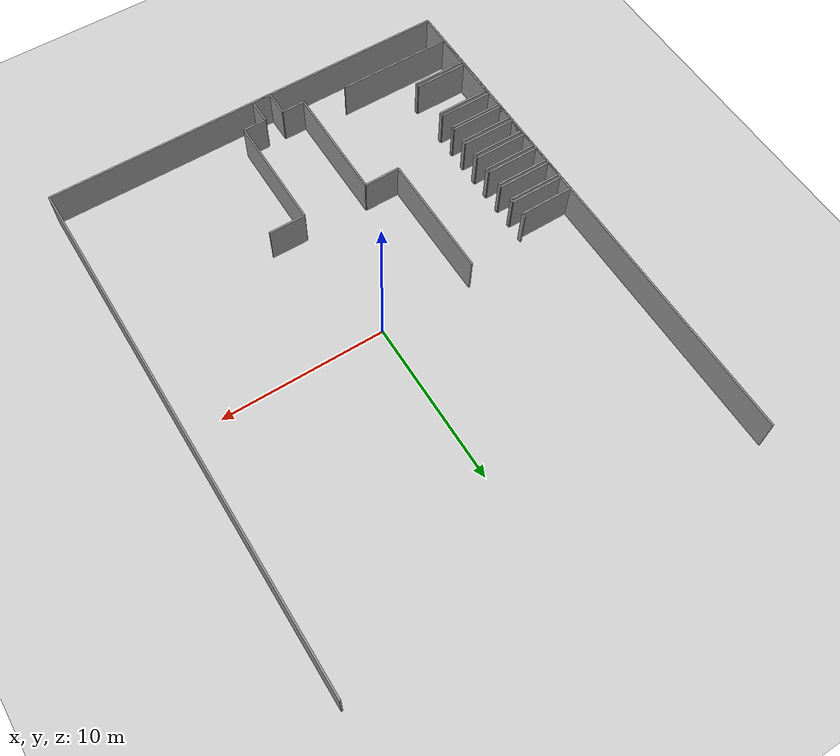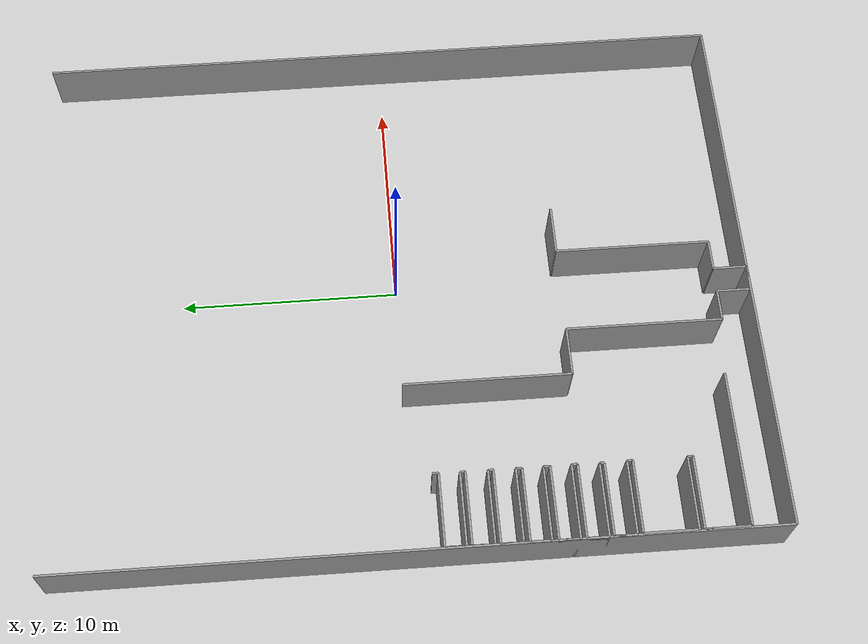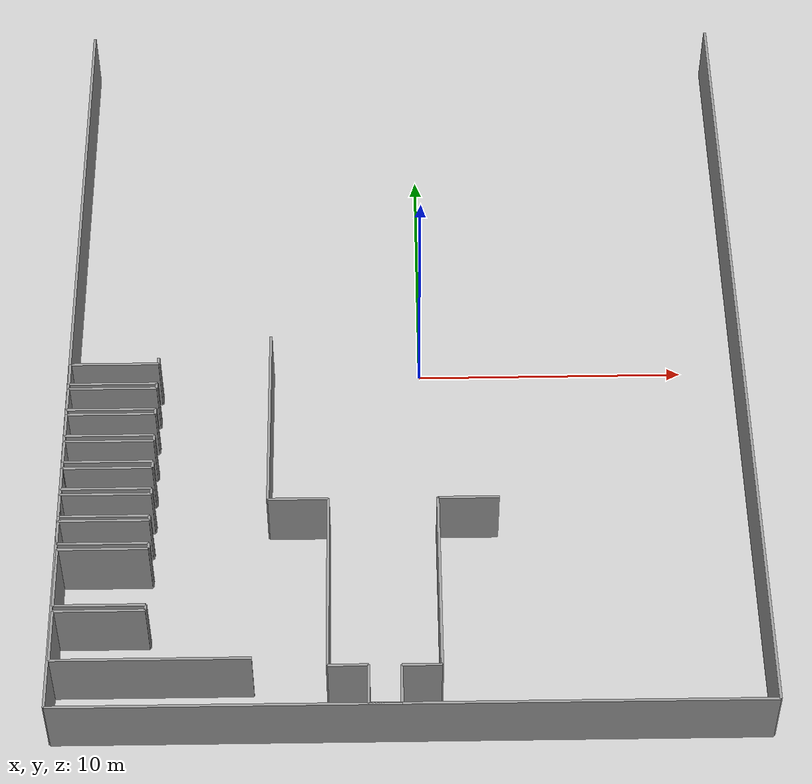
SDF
<sdf version="1.6">
 <world name="default">
  <model name="ground_plane">
   <static>1</static>
   <link name="link">
    <collision name="collision">
     <geometry><plane><normal>0 0 1</normal><size>100 100</size></plane></geometry>
     <surface><friction><ode><mu>100</mu><mu2>50</mu2></ode></friction></surface>
    </collision>
    <visual name="visual">
     <cast_shadows>0</cast_shadows>
     <geometry><plane><normal>0 0 1</normal><size>100 100</size></plane></geometry>
     <material>
      <script><uri>file://media/materials/scripts/gazebo.material</uri><name>Gazebo/Grey</name></script>
     </material>
    </visual>
   </link>
  </model>
  <model name="50045365">
   <static>1</static>
   <link name="Wall_37">
    <collision name="Wall_37_Collision">
     <geometry><box><size>1.53298293723 0.1 2.5</size></box></geometry>
     <pose>0.766491468617 0 1.25 0 0 0</pose>
    </collision>
    <visual name="Wall_37_Visual">
     <pose>0.766491468617 0 1.25 0 0 0</pose>
     <geometry><box><size>1.53298293723 0.1 2.5</size></box></geometry>
     <material>
      <script><uri>file://media/materials/scripts/gazebo.material</uri><name>Gazebo/Grey</name></script>
      <ambient>1 1 1 1</ambient>
     </material>
    </visual>
    <pose>11.1219022953 -32.0639092017 0 0 0 1.57079632679</pose>
   </link>
   <link name="Wall_38">
    <collision name="Wall_38_Collision">
     <geometry><box><size>1.41618423725 0.1 2.5</size></box></geometry>
     <pose>0.708092118627 0 1.25 0 0 0</pose>
    </collision>
    <visual name="Wall_38_Visual">
     <pose>0.708092118627 0 1.25 0 0 0</pose>
     <geometry><box><size>1.41618423725 0.1 2.5</size></box></geometry>
     <material>
      <script><uri>file://media/materials/scripts/gazebo.material</uri><name>Gazebo/Grey</name></script>
      <ambient>1 1 1 1</ambient>
     </material>
    </visual>
    <pose>11.1219022953 -30.5309262645 0 0 0 3.14159265359</pose>
   </link>
   <link name="Wall_39">
    <collision name="Wall_39_Collision">
     <geometry><box><size>7.06632134877 0.1 2.5</size></box></geometry>
     <pose>3.53316067439 0 1.25 0 0 0</pose>
    </collision>
    <visual name="Wall_39_Visual">
     <pose>3.53316067439 0 1.25 0 0 0</pose>
     <geometry><box><size>7.06632134877 0.1 2.5</size></box></geometry>
     <material>
      <script><uri>file://media/materials/scripts/gazebo.material</uri><name>Gazebo/Grey</name></script>
      <ambient>1 1 1 1</ambient>
     </material>
    </visual>
    <pose>9.70571805809 -30.5309262645 0 0 0 1.57079632679</pose>
   </link>
   <link name="Wall_40">
    <collision name="Wall_40_Collision">
     <geometry><box><size>2.18108876701 0.1 2.5</size></box></geometry>
     <pose>1.09054438351 0 1.25 0 0 0</pose>
    </collision>
    <visual name="Wall_40_Visual">
     <pose>1.09054438351 0 1.25 0 0 0</pose>
     <geometry><box><size>2.18108876701 0.1 2.5</size></box></geometry>
     <material>
      <script><uri>file://media/materials/scripts/gazebo.material</uri><name>Gazebo/Grey</name></script>
      <ambient>1 1 1 1</ambient>
     </material>
    </visual>
    <pose>9.70571805809 -23.4646049157 0 0 0 3.14159265359</pose>
   </link>
   <link name="Wall_41">
    <collision name="Wall_41_Collision">
     <geometry><box><size>7.5483698964 0.1 2.5</size></box></geometry>
     <pose>3.7741849482 0 1.25 0 0 0</pose>
    </collision>
    <visual name="Wall_41_Visual">
     <pose>3.7741849482 0 1.25 0 0 0</pose>
     <geometry><box><size>7.5483698964 0.1 2.5</size></box></geometry>
     <material>
      <script><uri>file://media/materials/scripts/gazebo.material</uri><name>Gazebo/Grey</name></script>
      <ambient>1 1 1 1</ambient>
     </material>
    </visual>
    <pose>7.52462929108 -23.4646049157 0 0 0 1.57079632679</pose>
   </link>
   <link name="Wall_46">
    <collision name="Wall_46_Collision">
     <geometry><box><size>2.22552305505 0.1 2.5</size></box></geometry>
     <pose>1.11276152752 0 1.25 0 0 0</pose>
    </collision>
    <visual name="Wall_46_Visual">
     <pose>1.11276152752 0 1.25 0 0 0</pose>
     <geometry><box><size>2.22552305505 0.1 2.5</size></box></geometry>
     <material>
      <script><uri>file://media/materials/scripts/gazebo.material</uri><name>Gazebo/Grey</name></script>
      <ambient>1 1 1 1</ambient>
     </material>
    </visual>
    <pose>15.9036664635 -23.4700639854 0 0 0 3.14159265359</pose>
   </link>
   <link name="Wall_47">
    <collision name="Wall_47_Collision">
     <geometry><box><size>7.0754621166 0.1 2.5</size></box></geometry>
     <pose>3.5377310583 0 1.25 0 0 0</pose>
    </collision>
    <visual name="Wall_47_Visual">
     <pose>3.5377310583 0 1.25 0 0 0</pose>
     <geometry><box><size>7.0754621166 0.1 2.5</size></box></geometry>
     <material>
      <script><uri>file://media/materials/scripts/gazebo.material</uri><name>Gazebo/Grey</name></script>
      <ambient>1 1 1 1</ambient>
     </material>
    </visual>
    <pose>13.6781434085 -23.4700639854 0 0 0 -1.57079632679</pose>
   </link>
   <link name="Wall_48">
    <collision name="Wall_48_Collision">
     <geometry><box><size>1.40539305302 0.1 2.5</size></box></geometry>
     <pose>0.702696526508 0 1.25 0 0 0</pose>
    </collision>
    <visual name="Wall_48_Visual">
     <pose>0.702696526508 0 1.25 0 0 0</pose>
     <geometry><box><size>1.40539305302 0.1 2.5</size></box></geometry>
     <material>
      <script><uri>file://media/materials/scripts/gazebo.material</uri><name>Gazebo/Grey</name></script>
      <ambient>1 1 1 1</ambient>
     </material>
    </visual>
    <pose>13.6781434085 -30.545526102 0 0 0 3.14159265359</pose>
   </link>
   <link name="Wall_49">
    <collision name="Wall_49_Collision">
     <geometry><box><size>1.53933069267 0.1 2.5</size></box></geometry>
     <pose>0.769665346334 0 1.25 0 0 0</pose>
    </collision>
    <visual name="Wall_49_Visual">
     <pose>0.769665346334 0 1.25 0 0 0</pose>
     <geometry><box><size>1.53933069267 0.1 2.5</size></box></geometry>
     <material>
      <script><uri>file://media/materials/scripts/gazebo.material</uri><name>Gazebo/Grey</name></script>
      <ambient>1 1 1 1</ambient>
     </material>
    </visual>
    <pose>12.2727503555 -30.545526102 0 0 0 -1.57079632679</pose>
   </link>
   <link name="Wall_50">
    <collision name="Wall_50_Collision">
     <geometry><box><size>1.15103868708 0.1 2.5</size></box></geometry>
     <pose>0.575519343538 0 1.25 0 0 0</pose>
    </collision>
    <visual name="Wall_50_Visual">
     <pose>0.575519343538 0 1.25 0 0 0</pose>
     <geometry><box><size>1.15103868708 0.1 2.5</size></box></geometry>
     <material>
      <script><uri>file://media/materials/scripts/gazebo.material</uri><name>Gazebo/Grey</name></script>
      <ambient>1 1 1 1</ambient>
     </material>
    </visual>
    <pose>12.2727503555 -32.0848567946 0 0 0 3.12339278799</pose>
   </link>
   <link name="Wall_51">
    <collision name="Wall_51_Collision">
     <geometry><box><size>2.02188706074 0.1 2.5</size></box></geometry>
     <pose>1.01094353037 0 1.25 0 0 0</pose>
    </collision>
    <visual name="Wall_51_Visual">
     <pose>1.01094353037 0 1.25 0 0 0</pose>
     <geometry><box><size>2.02188706074 0.1 2.5</size></box></geometry>
     <material>
      <script><uri>file://media/materials/scripts/gazebo.material</uri><name>Gazebo/Grey</name></script>
      <ambient>1 1 1 1</ambient>
     </material>
    </visual>
    <pose>0.0500203128174 -30.1965265082 0 0 0 1.57079632679</pose>
   </link>
   <link name="Wall_52">
    <collision name="Wall_52_Collision">
     <geometry><box><size>3.2596993703 0.1 2.5</size></box></geometry>
     <pose>1.62984968515 0 1.25 0 0 0</pose>
    </collision>
    <visual name="Wall_52_Visual">
     <pose>1.62984968515 0 1.25 0 0 0</pose>
     <geometry><box><size>3.2596993703 0.1 2.5</size></box></geometry>
     <material>
      <script><uri>file://media/materials/scripts/gazebo.material</uri><name>Gazebo/Grey</name></script>
      <ambient>1 1 1 1</ambient>
     </material>
    </visual>
    <pose>0.0500203128174 -28.1746394475 0 0 0 0.0</pose>
   </link>
   <link name="Wall_53">
    <collision name="Wall_53_Collision">
     <geometry><box><size>0.228519195612 0.1 2.5</size></box></geometry>
     <pose>0.114259597806 0 1.25 0 0 0</pose>
    </collision>
    <visual name="Wall_53_Visual">
     <pose>0.114259597806 0 1.25 0 0 0</pose>
     <geometry><box><size>0.228519195612 0.1 2.5</size></box></geometry>
     <material>
      <script><uri>file://media/materials/scripts/gazebo.material</uri><name>Gazebo/Grey</name></script>
      <ambient>1 1 1 1</ambient>
     </material>
    </visual>
    <pose>3.30971968312 -28.1746394475 0 0 0 1.57079632679</pose>
   </link>
   <link name="Wall_54">
    <collision name="Wall_54_Collision">
     <geometry><box><size>3.26274629291 0.1 2.5</size></box></geometry>
     <pose>1.63137314646 0 1.25 0 0 0</pose>
    </collision>
    <visual name="Wall_54_Visual">
     <pose>1.63137314646 0 1.25 0 0 0</pose>
     <geometry><box><size>3.26274629291 0.1 2.5</size></box></geometry>
     <material>
      <script><uri>file://media/materials/scripts/gazebo.material</uri><name>Gazebo/Grey</name></script>
      <ambient>1 1 1 1</ambient>
     </material>
    </visual>
    <pose>3.30971968312 -27.9461202519 0 0 0 3.14159265359</pose>
   </link>
   <link name="Wall_55">
    <collision name="Wall_55_Collision">
     <geometry><box><size>2.38954905545 0.1 2.5</size></box></geometry>
     <pose>1.19477452773 0 1.25 0 0 0</pose>
    </collision>
    <visual name="Wall_55_Visual">
     <pose>1.19477452773 0 1.25 0 0 0</pose>
     <geometry><box><size>2.38954905545 0.1 2.5</size></box></geometry>
     <material>
      <script><uri>file://media/materials/scripts/gazebo.material</uri><name>Gazebo/Grey</name></script>
      <ambient>1 1 1 1</ambient>
     </material>
    </visual>
    <pose>0.0469733902092 -27.9461202519 0 0 0 1.57079632679</pose>
   </link>
   <link name="Wall_56">
    <collision name="Wall_56_Collision">
     <geometry><box><size>3.2538594353 0.1 2.5</size></box></geometry>
     <pose>1.62692971765 0 1.25 0 0 0</pose>
    </collision>
    <visual name="Wall_56_Visual">
     <pose>1.62692971765 0 1.25 0 0 0</pose>
     <geometry><box><size>3.2538594353 0.1 2.5</size></box></geometry>
     <material>
      <script><uri>file://media/materials/scripts/gazebo.material</uri><name>Gazebo/Grey</name></script>
      <ambient>1 1 1 1</ambient>
     </material>
    </visual>
    <pose>0.0469733902092 -25.5565711964 0 0 0 0.0</pose>
   </link>
   <link name="Wall_57">
    <collision name="Wall_57_Collision">
     <geometry><box><size>0.242865122893 0.1 2.5</size></box></geometry>
     <pose>0.121432561446 0 1.25 0 0 0</pose>
    </collision>
    <visual name="Wall_57_Visual">
     <pose>0.121432561446 0 1.25 0 0 0</pose>
     <geometry><box><size>0.242865122893 0.1 2.5</size></box></geometry>
     <material>
      <script><uri>file://media/materials/scripts/gazebo.material</uri><name>Gazebo/Grey</name></script>
      <ambient>1 1 1 1</ambient>
     </material>
    </visual>
    <pose>3.30083282551 -25.5565711964 0 0 0 1.57079632679</pose>
   </link>
   <link name="Wall_58">
    <collision name="Wall_58_Collision">
     <geometry><box><size>3.28978773106 0.1 2.5</size></box></geometry>
     <pose>1.64489386553 0 1.25 0 0 0</pose>
    </collision>
    <visual name="Wall_58_Visual">
     <pose>1.64489386553 0 1.25 0 0 0</pose>
     <geometry><box><size>3.28978773106 0.1 2.5</size></box></geometry>
     <material>
      <script><uri>file://media/materials/scripts/gazebo.material</uri><name>Gazebo/Grey</name></script>
      <ambient>1 1 1 1</ambient>
     </material>
    </visual>
    <pose>3.30083282551 -25.3137060735 0 0 0 3.14159265359</pose>
   </link>
   <link name="Wall_59">
    <collision name="Wall_59_Collision">
     <geometry><box><size>0.993550680479 0.1 2.5</size></box></geometry>
     <pose>0.49677534024 0 1.25 0 0 0</pose>
    </collision>
    <visual name="Wall_59_Visual">
     <pose>0.49677534024 0 1.25 0 0 0</pose>
     <geometry><box><size>0.993550680479 0.1 2.5</size></box></geometry>
     <material>
      <script><uri>file://media/materials/scripts/gazebo.material</uri><name>Gazebo/Grey</name></script>
      <ambient>1 1 1 1</ambient>
     </material>
    </visual>
    <pose>0.0110450944546 -25.3137060735 0 0 0 1.57079632679</pose>
   </link>
   <link name="Wall_60">
    <collision name="Wall_60_Collision">
     <geometry><box><size>3.26782449726 0.1 2.5</size></box></geometry>
     <pose>1.63391224863 0 1.25 0 0 0</pose>
    </collision>
    <visual name="Wall_60_Visual">
     <pose>1.63391224863 0 1.25 0 0 0</pose>
     <geometry><box><size>3.26782449726 0.1 2.5</size></box></geometry>
     <material>
      <script><uri>file://media/materials/scripts/gazebo.material</uri><name>Gazebo/Grey</name></script>
      <ambient>1 1 1 1</ambient>
     </material>
    </visual>
    <pose>0.0110450944546 -24.3201553931 0 0 0 0.0</pose>
   </link>
   <link name="Wall_61">
    <collision name="Wall_61_Collision">
     <geometry><box><size>0.198684745074 0.1 2.5</size></box></geometry>
     <pose>0.0993423725371 0 1.25 0 0 0</pose>
    </collision>
    <visual name="Wall_61_Visual">
     <pose>0.0993423725371 0 1.25 0 0 0</pose>
     <geometry><box><size>0.198684745074 0.1 2.5</size></box></geometry>
     <material>
      <script><uri>file://media/materials/scripts/gazebo.material</uri><name>Gazebo/Grey</name></script>
      <ambient>1 1 1 1</ambient>
     </material>
    </visual>
    <pose>3.27886959171 -24.3201553931 0 0 0 1.57079632679</pose>
   </link>
   <link name="Wall_62">
    <collision name="Wall_62_Collision">
     <geometry><box><size>3.27886959171 0.1 2.5</size></box></geometry>
     <pose>1.63943479586 0 1.25 0 0 0</pose>
    </collision>
    <visual name="Wall_62_Visual">
     <pose>1.63943479586 0 1.25 0 0 0</pose>
     <geometry><box><size>3.27886959171 0.1 2.5</size></box></geometry>
     <material>
      <script><uri>file://media/materials/scripts/gazebo.material</uri><name>Gazebo/Grey</name></script>
      <ambient>1 1 1 1</ambient>
     </material>
    </visual>
    <pose>3.27886959171 -24.121470648 0 0 0 3.14159265359</pose>
   </link>
   <link name="Wall_63">
    <collision name="Wall_63_Collision">
     <geometry><box><size>0.960415397116 0.1 2.5</size></box></geometry>
     <pose>0.480207698558 0 1.25 0 0 0</pose>
    </collision>
    <visual name="Wall_63_Visual">
     <pose>0.480207698558 0 1.25 0 0 0</pose>
     <geometry><box><size>0.960415397116 0.1 2.5</size></box></geometry>
     <material>
      <script><uri>file://media/materials/scripts/gazebo.material</uri><name>Gazebo/Grey</name></script>
      <ambient>1 1 1 1</ambient>
     </material>
    </visual>
    <pose>0.0 -24.121470648 0 0 0 1.57079632679</pose>
   </link>
   <link name="Wall_64">
    <collision name="Wall_64_Collision">
     <geometry><box><size>3.30083282551 0.1 2.5</size></box></geometry>
     <pose>1.65041641276 0 1.25 0 0 0</pose>
    </collision>
    <visual name="Wall_64_Visual">
     <pose>1.65041641276 0 1.25 0 0 0</pose>
     <geometry><box><size>3.30083282551 0.1 2.5</size></box></geometry>
     <material>
      <script><uri>file://media/materials/scripts/gazebo.material</uri><name>Gazebo/Grey</name></script>
      <ambient>1 1 1 1</ambient>
     </material>
    </visual>
    <pose>0.0 -23.1610552509 0 0 0 0.0</pose>
   </link>
   <link name="Wall_65">
    <collision name="Wall_65_Collision">
     <geometry><box><size>0.253910217347 0.1 2.5</size></box></geometry>
     <pose>0.126955108674 0 1.25 0 0 0</pose>
    </collision>
    <visual name="Wall_65_Visual">
     <pose>0.126955108674 0 1.25 0 0 0</pose>
     <geometry><box><size>0.253910217347 0.1 2.5</size></box></geometry>
     <material>
      <script><uri>file://media/materials/scripts/gazebo.material</uri><name>Gazebo/Grey</name></script>
      <ambient>1 1 1 1</ambient>
     </material>
    </visual>
    <pose>3.30083282551 -23.1610552509 0 0 0 1.57079632679</pose>
   </link>
   <link name="Wall_66">
    <collision name="Wall_66_Collision">
     <geometry><box><size>3.30083282551 0.1 2.5</size></box></geometry>
     <pose>1.65041641276 0 1.25 0 0 0</pose>
    </collision>
    <visual name="Wall_66_Visual">
     <pose>1.65041641276 0 1.25 0 0 0</pose>
     <geometry><box><size>3.30083282551 0.1 2.5</size></box></geometry>
     <material>
      <script><uri>file://media/materials/scripts/gazebo.material</uri><name>Gazebo/Grey</name></script>
      <ambient>1 1 1 1</ambient>
     </material>
    </visual>
    <pose>3.30083282551 -22.9071450335 0 0 0 3.14159265359</pose>
   </link>
   <link name="Wall_67">
    <collision name="Wall_67_Collision">
     <geometry><box><size>0.92740706886 0.1 2.5</size></box></geometry>
     <pose>0.46370353443 0 1.25 0 0 0</pose>
    </collision>
    <visual name="Wall_67_Visual">
     <pose>0.46370353443 0 1.25 0 0 0</pose>
     <geometry><box><size>0.92740706886 0.1 2.5</size></box></geometry>
     <material>
      <script><uri>file://media/materials/scripts/gazebo.material</uri><name>Gazebo/Grey</name></script>
      <ambient>1 1 1 1</ambient>
     </material>
    </visual>
    <pose>0.0 -22.9071450335 0 0 0 1.57079632679</pose>
   </link>
   <link name="Wall_68">
    <collision name="Wall_68_Collision">
     <geometry><box><size>3.28978773106 0.1 2.5</size></box></geometry>
     <pose>1.64489386553 0 1.25 0 0 0</pose>
    </collision>
    <visual name="Wall_68_Visual">
     <pose>1.64489386553 0 1.25 0 0 0</pose>
     <geometry><box><size>3.28978773106 0.1 2.5</size></box></geometry>
     <material>
      <script><uri>file://media/materials/scripts/gazebo.material</uri><name>Gazebo/Grey</name></script>
      <ambient>1 1 1 1</ambient>
     </material>
    </visual>
    <pose>0.0 -21.9797379647 0 0 0 0.0</pose>
   </link>
   <link name="Wall_69">
    <collision name="Wall_69_Collision">
     <geometry><box><size>0.287045500711 0.1 2.5</size></box></geometry>
     <pose>0.143522750355 0 1.25 0 0 0</pose>
    </collision>
    <visual name="Wall_69_Visual">
     <pose>0.143522750355 0 1.25 0 0 0</pose>
     <geometry><box><size>0.287045500711 0.1 2.5</size></box></geometry>
     <material>
      <script><uri>file://media/materials/scripts/gazebo.material</uri><name>Gazebo/Grey</name></script>
      <ambient>1 1 1 1</ambient>
     </material>
    </visual>
    <pose>3.28978773106 -21.9797379647 0 0 0 1.57079632679</pose>
   </link>
   <link name="Wall_70">
    <collision name="Wall_70_Collision">
     <geometry><box><size>3.2787426366 0.1 2.5</size></box></geometry>
     <pose>1.6393713183 0 1.25 0 0 0</pose>
    </collision>
    <visual name="Wall_70_Visual">
     <pose>1.6393713183 0 1.25 0 0 0</pose>
     <geometry><box><size>3.2787426366 0.1 2.5</size></box></geometry>
     <material>
      <script><uri>file://media/materials/scripts/gazebo.material</uri><name>Gazebo/Grey</name></script>
      <ambient>1 1 1 1</ambient>
     </material>
    </visual>
    <pose>3.28978773106 -21.6926924639 0 0 0 3.14159265359</pose>
   </link>
   <link name="Wall_71">
    <collision name="Wall_71_Collision">
     <geometry><box><size>0.927280113752 0.1 2.5</size></box></geometry>
     <pose>0.463640056876 0 1.25 0 0 0</pose>
    </collision>
    <visual name="Wall_71_Visual">
     <pose>0.463640056876 0 1.25 0 0 0</pose>
     <geometry><box><size>0.927280113752 0.1 2.5</size></box></geometry>
     <material>
      <script><uri>file://media/materials/scripts/gazebo.material</uri><name>Gazebo/Grey</name></script>
      <ambient>1 1 1 1</ambient>
     </material>
    </visual>
    <pose>0.0110450944546 -21.6926924639 0 0 0 1.57079632679</pose>
   </link>
   <link name="Wall_72">
    <collision name="Wall_72_Collision">
     <geometry><box><size>3.2787426366 0.1 2.5</size></box></geometry>
     <pose>1.6393713183 0 1.25 0 0 0</pose>
    </collision>
    <visual name="Wall_72_Visual">
     <pose>1.6393713183 0 1.25 0 0 0</pose>
     <geometry><box><size>3.2787426366 0.1 2.5</size></box></geometry>
     <material>
      <script><uri>file://media/materials/scripts/gazebo.material</uri><name>Gazebo/Grey</name></script>
      <ambient>1 1 1 1</ambient>
     </material>
    </visual>
    <pose>0.0110450944546 -20.7654123502 0 0 0 0.0</pose>
   </link>
   <link name="Wall_73">
    <collision name="Wall_73_Collision">
     <geometry><box><size>0.264955311802 0.1 2.5</size></box></geometry>
     <pose>0.132477655901 0 1.25 0 0 0</pose>
    </collision>
    <visual name="Wall_73_Visual">
     <pose>0.132477655901 0 1.25 0 0 0</pose>
     <geometry><box><size>0.264955311802 0.1 2.5</size></box></geometry>
     <material>
      <script><uri>file://media/materials/scripts/gazebo.material</uri><name>Gazebo/Grey</name></script>
      <ambient>1 1 1 1</ambient>
     </material>
    </visual>
    <pose>3.28978773106 -20.7654123502 0 0 0 1.57079632679</pose>
   </link>
   <link name="Wall_74">
    <collision name="Wall_74_Collision">
     <geometry><box><size>3.2787426366 0.1 2.5</size></box></geometry>
     <pose>1.6393713183 0 1.25 0 0 0</pose>
    </collision>
    <visual name="Wall_74_Visual">
     <pose>1.6393713183 0 1.25 0 0 0</pose>
     <geometry><box><size>3.2787426366 0.1 2.5</size></box></geometry>
     <material>
      <script><uri>file://media/materials/scripts/gazebo.material</uri><name>Gazebo/Grey</name></script>
      <ambient>1 1 1 1</ambient>
     </material>
    </visual>
    <pose>3.28978773106 -20.5004570384 0 0 0 3.14159265359</pose>
   </link>
   <link name="Wall_75">
    <collision name="Wall_75_Collision">
     <geometry><box><size>0.982505586025 0.1 2.5</size></box></geometry>
     <pose>0.491252793012 0 1.25 0 0 0</pose>
    </collision>
    <visual name="Wall_75_Visual">
     <pose>0.491252793012 0 1.25 0 0 0</pose>
     <geometry><box><size>0.982505586025 0.1 2.5</size></box></geometry>
     <material>
      <script><uri>file://media/materials/scripts/gazebo.material</uri><name>Gazebo/Grey</name></script>
      <ambient>1 1 1 1</ambient>
     </material>
    </visual>
    <pose>0.0110450944546 -20.5004570384 0 0 0 1.57079632679</pose>
   </link>
   <link name="Wall_76">
    <collision name="Wall_76_Collision">
     <geometry><box><size>3.28978773106 0.1 2.5</size></box></geometry>
     <pose>1.64489386553 0 1.25 0 0 0</pose>
    </collision>
    <visual name="Wall_76_Visual">
     <pose>1.64489386553 0 1.25 0 0 0</pose>
     <geometry><box><size>3.28978773106 0.1 2.5</size></box></geometry>
     <material>
      <script><uri>file://media/materials/scripts/gazebo.material</uri><name>Gazebo/Grey</name></script>
      <ambient>1 1 1 1</ambient>
     </material>
    </visual>
    <pose>0.0110450944546 -19.5179514524 0 0 0 0.0</pose>
   </link>
   <link name="Wall_77">
    <collision name="Wall_77_Collision">
     <geometry><box><size>0.220774933983 0.1 2.5</size></box></geometry>
     <pose>0.110387466992 0 1.25 0 0 0</pose>
    </collision>
    <visual name="Wall_77_Visual">
     <pose>0.110387466992 0 1.25 0 0 0</pose>
     <geometry><box><size>0.220774933983 0.1 2.5</size></box></geometry>
     <material>
      <script><uri>file://media/materials/scripts/gazebo.material</uri><name>Gazebo/Grey</name></script>
      <ambient>1 1 1 1</ambient>
     </material>
    </visual>
    <pose>3.30083282551 -19.5179514524 0 0 0 1.57079632679</pose>
   </link>
   <link name="Wall_78">
    <collision name="Wall_78_Collision">
     <geometry><box><size>3.28978773106 0.1 2.5</size></box></geometry>
     <pose>1.64489386553 0 1.25 0 0 0</pose>
    </collision>
    <visual name="Wall_78_Visual">
     <pose>1.64489386553 0 1.25 0 0 0</pose>
     <geometry><box><size>3.28978773106 0.1 2.5</size></box></geometry>
     <material>
      <script><uri>file://media/materials/scripts/gazebo.material</uri><name>Gazebo/Grey</name></script>
      <ambient>1 1 1 1</ambient>
     </material>
    </visual>
    <pose>3.30083282551 -19.2971765184 0 0 0 3.14159265359</pose>
   </link>
   <link name="Wall_79">
    <collision name="Wall_79_Collision">
     <geometry><box><size>0.982505586025 0.1 2.5</size></box></geometry>
     <pose>0.491252793012 0 1.25 0 0 0</pose>
    </collision>
    <visual name="Wall_79_Visual">
     <pose>0.491252793012 0 1.25 0 0 0</pose>
     <geometry><box><size>0.982505586025 0.1 2.5</size></box></geometry>
     <material>
      <script><uri>file://media/materials/scripts/gazebo.material</uri><name>Gazebo/Grey</name></script>
      <ambient>1 1 1 1</ambient>
     </material>
    </visual>
    <pose>0.0110450944546 -19.2971765184 0 0 0 1.57079632679</pose>
   </link>
   <link name="Wall_80">
    <collision name="Wall_80_Collision">
     <geometry><box><size>3.28978773106 0.1 2.5</size></box></geometry>
     <pose>1.64489386553 0 1.25 0 0 0</pose>
    </collision>
    <visual name="Wall_80_Visual">
     <pose>1.64489386553 0 1.25 0 0 0</pose>
     <geometry><box><size>3.28978773106 0.1 2.5</size></box></geometry>
     <material>
      <script><uri>file://media/materials/scripts/gazebo.material</uri><name>Gazebo/Grey</name></script>
      <ambient>1 1 1 1</ambient>
     </material>
    </visual>
    <pose>0.0110450944546 -18.3146709324 0 0 0 0.0</pose>
   </link>
   <link name="Wall_81">
    <collision name="Wall_81_Collision">
     <geometry><box><size>0.220774933983 0.1 2.5</size></box></geometry>
     <pose>0.110387466992 0 1.25 0 0 0</pose>
    </collision>
    <visual name="Wall_81_Visual">
     <pose>0.110387466992 0 1.25 0 0 0</pose>
     <geometry><box><size>0.220774933983 0.1 2.5</size></box></geometry>
     <material>
      <script><uri>file://media/materials/scripts/gazebo.material</uri><name>Gazebo/Grey</name></script>
      <ambient>1 1 1 1</ambient>
     </material>
    </visual>
    <pose>3.30083282551 -18.3146709324 0 0 0 1.57079632679</pose>
   </link>
   <link name="Wall_82">
    <collision name="Wall_82_Collision">
     <geometry><box><size>3.2787426366 0.1 2.5</size></box></geometry>
     <pose>1.6393713183 0 1.25 0 0 0</pose>
    </collision>
    <visual name="Wall_82_Visual">
     <pose>1.6393713183 0 1.25 0 0 0</pose>
     <geometry><box><size>3.2787426366 0.1 2.5</size></box></geometry>
     <material>
      <script><uri>file://media/materials/scripts/gazebo.material</uri><name>Gazebo/Grey</name></script>
      <ambient>1 1 1 1</ambient>
     </material>
    </visual>
    <pose>3.30083282551 -18.0938959984 0 0 0 3.14159265359</pose>
   </link>
   <link name="Wall_83">
    <collision name="Wall_83_Collision">
     <geometry><box><size>0.92740706886 0.1 2.5</size></box></geometry>
     <pose>0.46370353443 0 1.25 0 0 0</pose>
    </collision>
    <visual name="Wall_83_Visual">
     <pose>0.46370353443 0 1.25 0 0 0</pose>
     <geometry><box><size>0.92740706886 0.1 2.5</size></box></geometry>
     <material>
      <script><uri>file://media/materials/scripts/gazebo.material</uri><name>Gazebo/Grey</name></script>
      <ambient>1 1 1 1</ambient>
     </material>
    </visual>
    <pose>0.0220901889092 -18.0938959984 0 0 0 1.57079632679</pose>
   </link>
   <link name="Wall_84">
    <collision name="Wall_84_Collision">
     <geometry><box><size>3.30083282551 0.1 2.5</size></box></geometry>
     <pose>1.65041641276 0 1.25 0 0 0</pose>
    </collision>
    <visual name="Wall_84_Visual">
     <pose>1.65041641276 0 1.25 0 0 0</pose>
     <geometry><box><size>3.30083282551 0.1 2.5</size></box></geometry>
     <material>
      <script><uri>file://media/materials/scripts/gazebo.material</uri><name>Gazebo/Grey</name></script>
      <ambient>1 1 1 1</ambient>
     </material>
    </visual>
    <pose>0.0220901889092 -17.1664889295 0 0 0 0.0</pose>
   </link>
   <link name="Wall_85">
    <collision name="Wall_85_Collision">
     <geometry><box><size>0.276000406256 0.1 2.5</size></box></geometry>
     <pose>0.138000203128 0 1.25 0 0 0</pose>
    </collision>
    <visual name="Wall_85_Visual">
     <pose>0.138000203128 0 1.25 0 0 0</pose>
     <geometry><box><size>0.276000406256 0.1 2.5</size></box></geometry>
     <material>
      <script><uri>file://media/materials/scripts/gazebo.material</uri><name>Gazebo/Grey</name></script>
      <ambient>1 1 1 1</ambient>
     </material>
    </visual>
    <pose>3.32292301442 -17.1664889295 0 0 0 1.57079632679</pose>
   </link>
   <link name="Wall_93">
    <collision name="Wall_93_Collision">
     <geometry><box><size>7.02645758343 0.1 2.5</size></box></geometry>
     <pose>3.51322879171 0 1.25 0 0 0</pose>
    </collision>
    <visual name="Wall_93_Visual">
     <pose>3.51322879171 0 1.25 0 0 0</pose>
     <geometry><box><size>7.02645758343 0.1 2.5</size></box></geometry>
     <material>
      <script><uri>file://media/materials/scripts/gazebo.material</uri><name>Gazebo/Grey</name></script>
      <ambient>1 1 1 1</ambient>
     </material>
    </visual>
    <pose>7.07647775746 -30.195130002 0 0 0 -3.14139390391</pose>
   </link>
   <link name="Wall_94">
    <collision name="Wall_94_Collision">
     <geometry><box><size>32.0848567946 0.1 2.5</size></box></geometry>
     <pose>16.0424283973 0 1.25 0 0 0</pose>
    </collision>
    <visual name="Wall_94_Visual">
     <pose>16.0424283973 0 1.25 0 0 0</pose>
     <geometry><box><size>32.0848567946 0.1 2.5</size></box></geometry>
     <material>
      <script><uri>file://media/materials/scripts/gazebo.material</uri><name>Gazebo/Grey</name></script>
      <ambient>1 1 1 1</ambient>
     </material>
    </visual>
    <pose>25.2489589681 -32.0848567946 0 0 0 1.57079632679</pose>
   </link>
   <link name="Wall_95">
    <collision name="Wall_95_Collision">
     <geometry><box><size>25.2489589681 0.1 2.5</size></box></geometry>
     <pose>12.6244794841 0 1.25 0 0 0</pose>
    </collision>
    <visual name="Wall_95_Visual">
     <pose>12.6244794841 0 1.25 0 0 0</pose>
     <geometry><box><size>25.2489589681 0.1 2.5</size></box></geometry>
     <material>
      <script><uri>file://media/materials/scripts/gazebo.material</uri><name>Gazebo/Grey</name></script>
      <ambient>1 1 1 1</ambient>
     </material>
    </visual>
    <pose>25.2489589681 -32.0848567946 0 0 0 3.14159265359</pose>
   </link>
   <link name="Wall_96">
    <collision name="Wall_96_Collision">
     <geometry><box><size>32.0848567946 0.1 2.5</size></box></geometry>
     <pose>16.0424283973 0 1.25 0 0 0</pose>
    </collision>
    <visual name="Wall_96_Visual">
     <pose>16.0424283973 0 1.25 0 0 0</pose>
     <geometry><box><size>32.0848567946 0.1 2.5</size></box></geometry>
     <material>
      <script><uri>file://media/materials/scripts/gazebo.material</uri><name>Gazebo/Grey</name></script>
      <ambient>1 1 1 1</ambient>
     </material>
    </visual>
    <pose>0.0 -32.0848567946 0 0 0 1.57079632679</pose>
   </link>
   <pose>-13.15 16.0348567946 0 0 0 0</pose>
  </model>
 </world>
</sdf>
